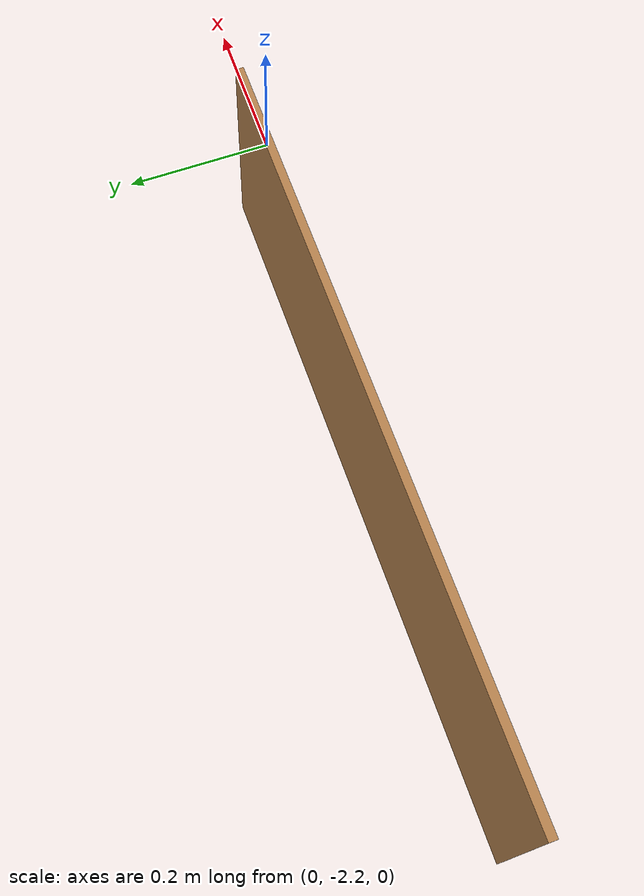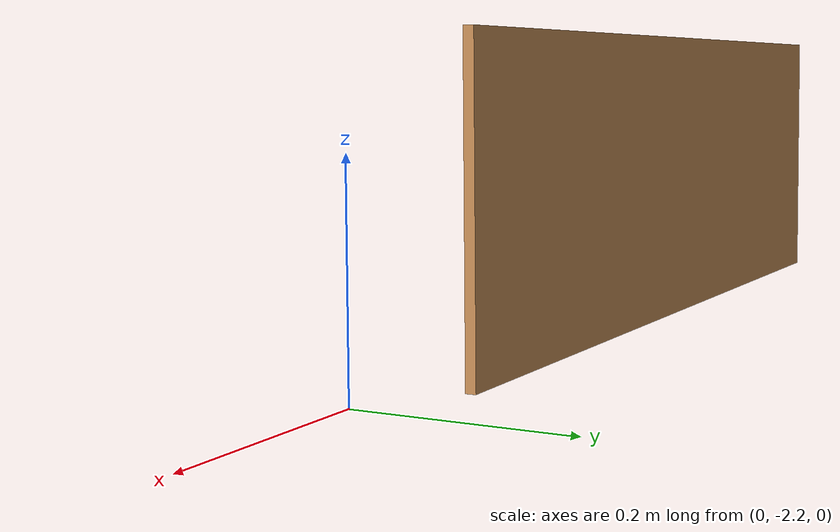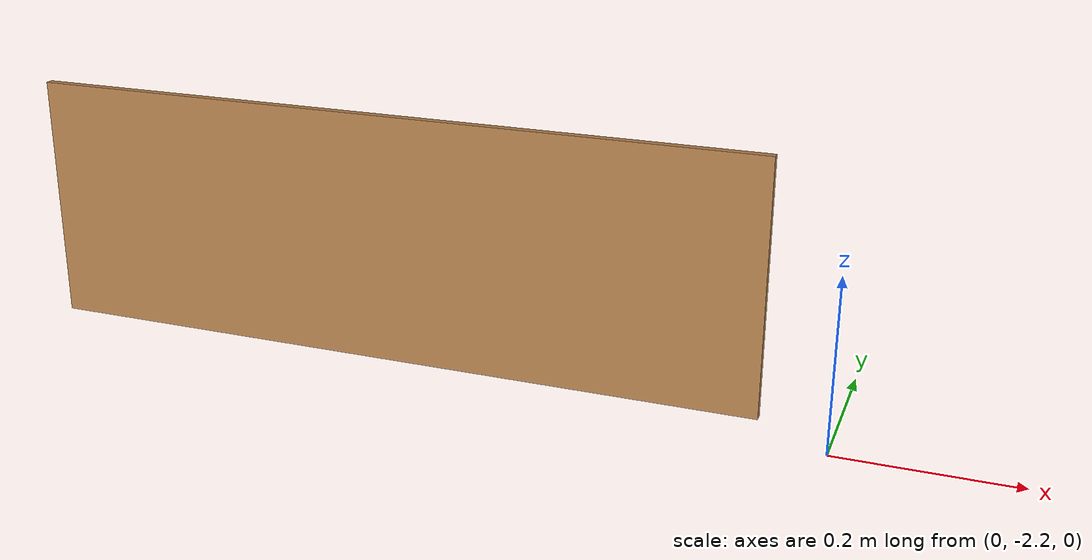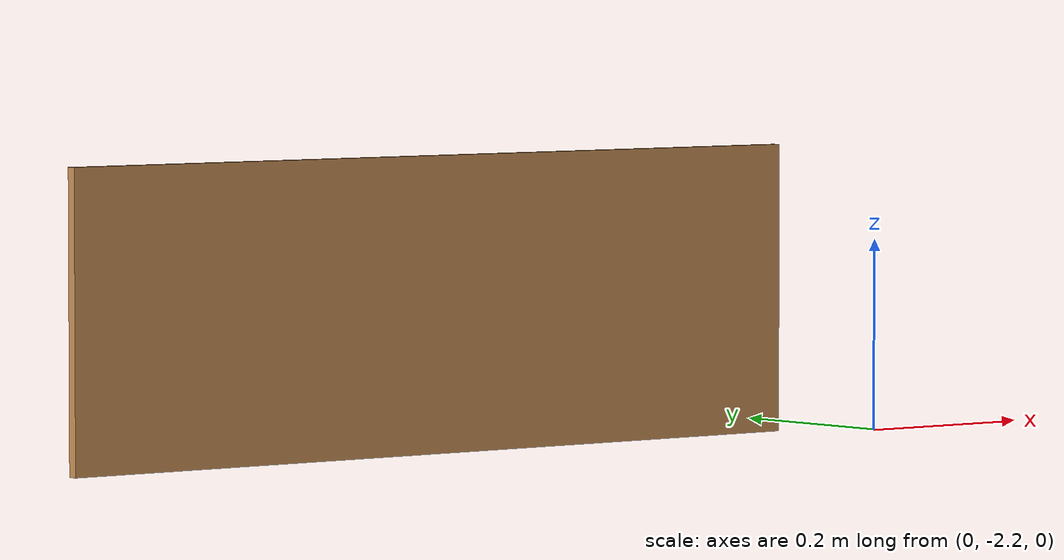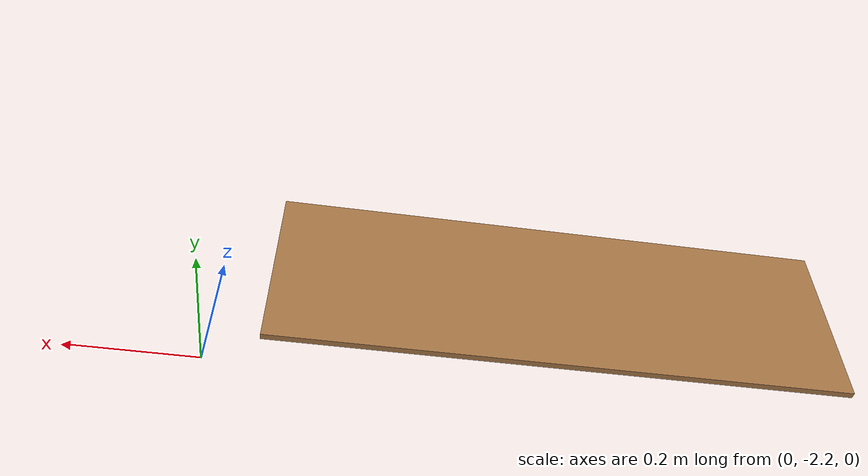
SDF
<?xml version='1.0'?>
<sdf version='1.7'>
  <model name='Fusta09'>
    <pose>-0.4925 -1.0725 0 0 -0 0</pose>
    <link name='Wall_2'>
      <collision name='Wall_2_Collision'>
        <geometry>
          <box>
            <size>0.9 0.01 0.3</size>
          </box>
        </geometry>
        <pose>0 0 0.15 0 -0 0</pose>
      </collision>
      <visual name='Wall_2_Visual'>
        <pose>0 0 0.15 0 -0 0</pose>
        <geometry>
          <box>
            <size>0.9 0.01 0.3</size>
          </box>
        </geometry>
        <material>
          <script>
            <uri>file://media/materials/scripts/gazebo.material</uri>
            <name>Gazebo/Wood</name>
          </script>
          <ambient>1 1 1 1</ambient>
        </material>
        <meta>
          <layer>0</layer>
        </meta>
      </visual>
      <pose>-0.0425 -1.0675 0 0 -0 0</pose>
    </link>
    <static>1</static>
  </model>
</sdf>
